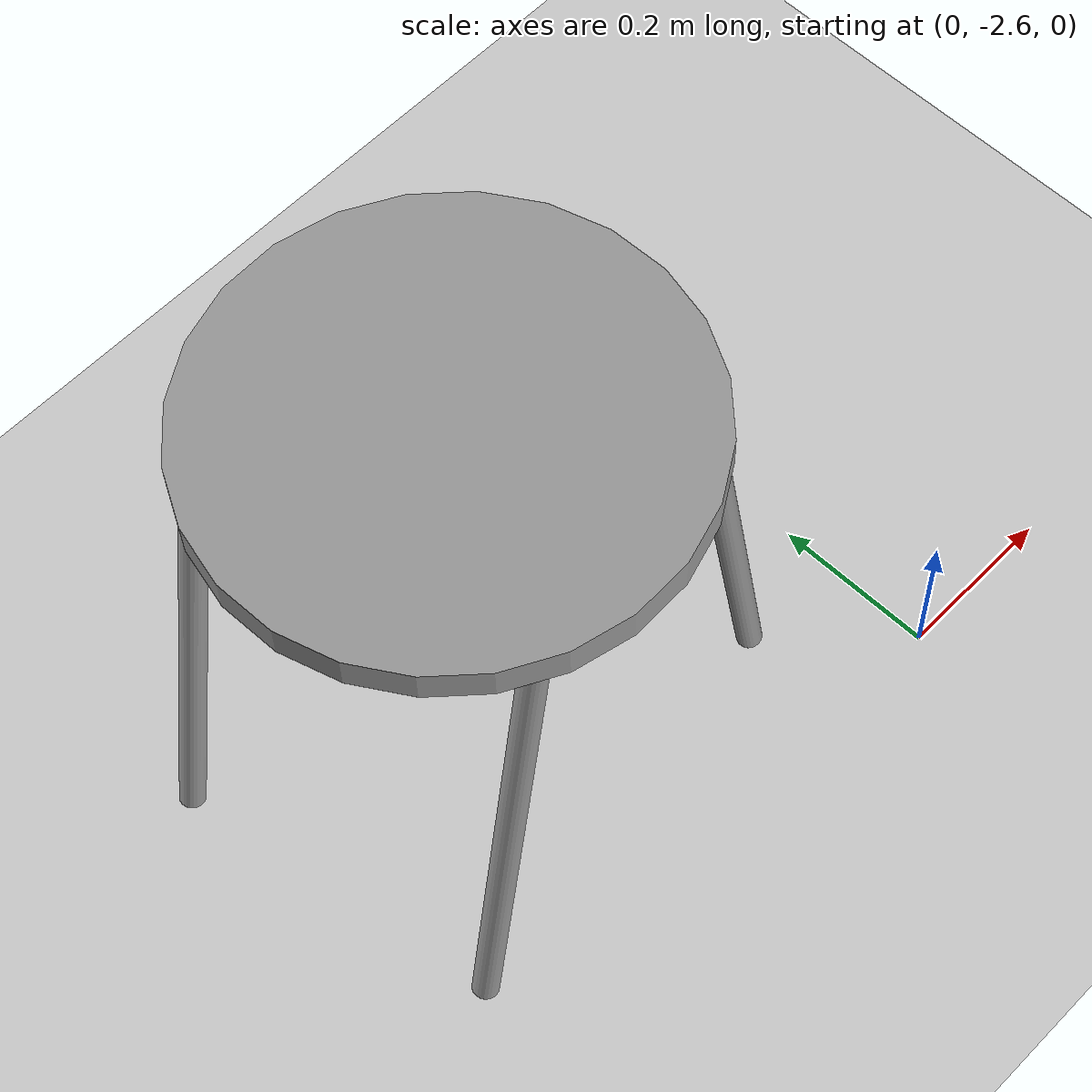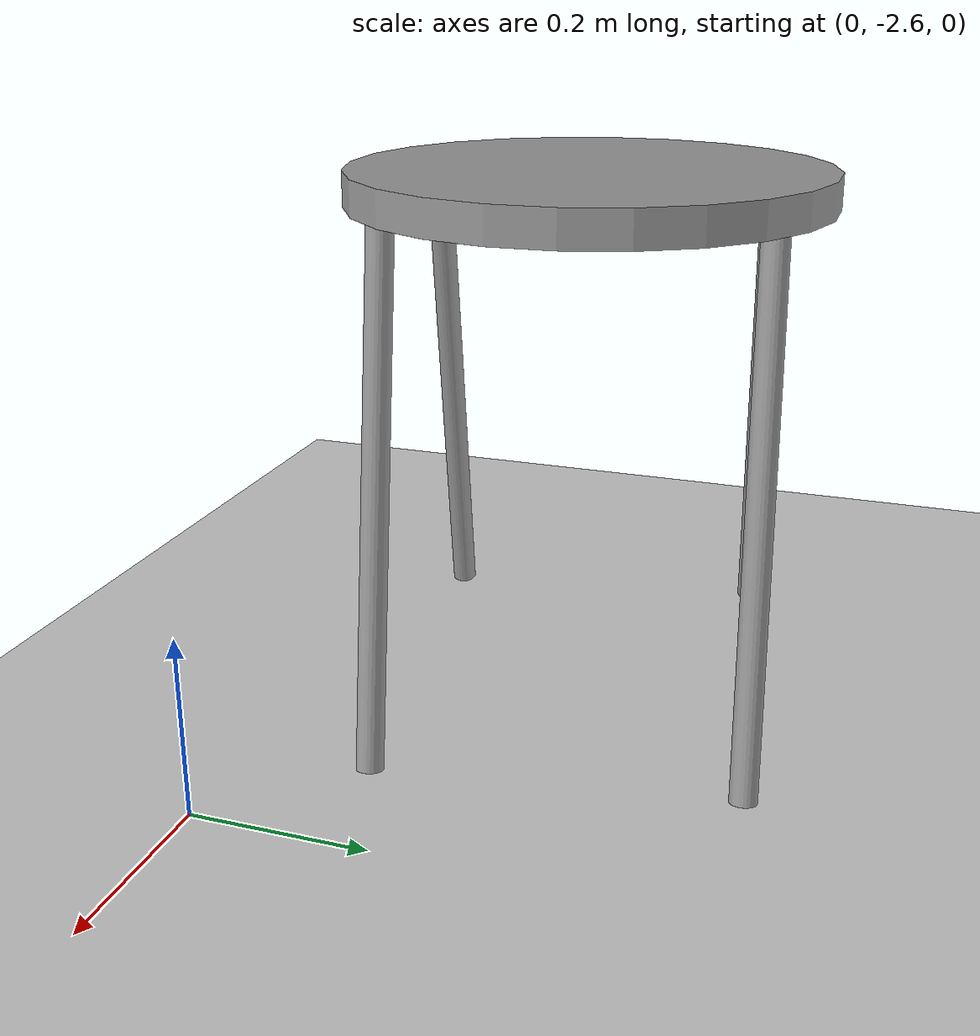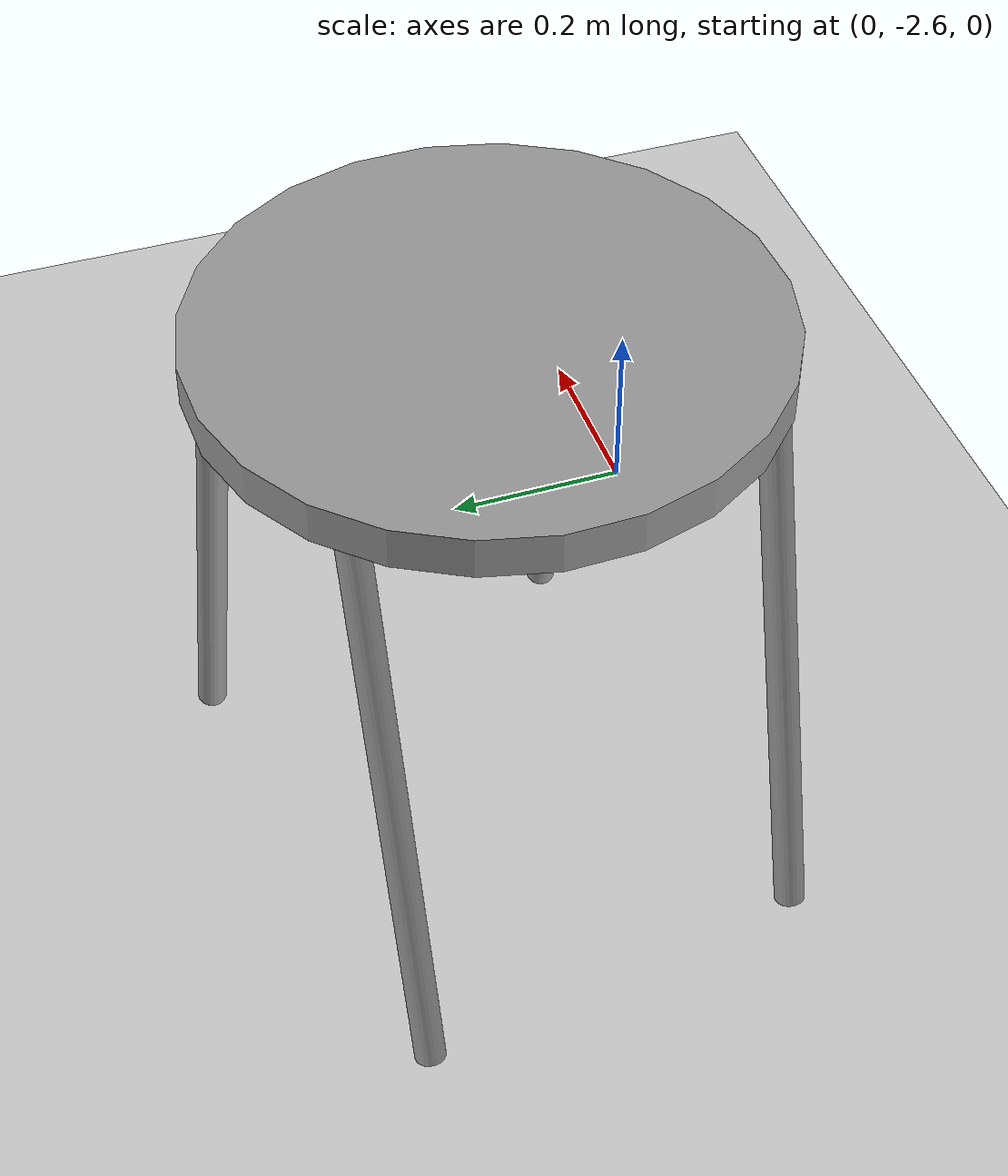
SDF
<sdf version="1.6">
 <world name="default">
  <model name="ground_plane">
   <static>1</static>
   <link name="link">
    <collision name="collision">
     <geometry><plane><normal>0 0 1</normal><size>100 100</size></plane></geometry>
     <surface><friction><ode><mu>100</mu><mu2>50</mu2></ode></friction></surface>
    </collision>
    <visual name="visual">
     <cast_shadows>0</cast_shadows>
     <geometry><plane><normal>0 0 1</normal><size>100 100</size></plane></geometry>
     <material>
      <script><uri>file://media/materials/scripts/gazebo.material</uri><name>Gazebo/Grey</name></script>
     </material>
    </visual>
   </link>
  </model>
  <model name="chair01_1">
   <link name="link_1">
    <pose>0 0 0.6 0 -0 0</pose>
    <inertial>
     <mass>1</mass>
     <inertia><ixx>0.145833</ixx><ixy>0</ixy><ixz>0</ixz><iyy>0.145833</iyy><iyz>0</iyz><izz>0.125</izz></inertia>
    </inertial>
    <visual name="visual">
     <geometry><cylinder><radius>0.27</radius><length>0.04</length></cylinder></geometry>
     <material>
      <lighting>1</lighting>
      <script><uri>file://media/materials/scripts/gazebo.material</uri><name>Gazebo/Grey</name></script>
      <shader type="pixel"><normal_map>__default__</normal_map></shader>
      <ambient>0.3 0.3 0.3 1</ambient>
      <diffuse>0.7 0.7 0.7 1</diffuse>
      <specular>0.01 0.01 0.01 1</specular>
      <emissive>0 0 0 1</emissive>
     </material>
    </visual>
    <collision name="collision">
     <geometry><cylinder><radius>0.27</radius><length>0.04</length></cylinder></geometry>
     <surface>
      <friction>
       <ode><mu>1</mu><mu2>1</mu2><fdir1>0 0 0</fdir1><slip1>0</slip1><slip2>0</slip2></ode>
       <torsional>
        <coefficient>1</coefficient>
        <patch_radius>0</patch_radius>
        <surface_radius>0</surface_radius>
        <use_patch_radius>1</use_patch_radius>
        <ode><slip>0</slip></ode>
       </torsional>
      </friction>
      <bounce><restitution_coefficient>0</restitution_coefficient><threshold>1e+06</threshold></bounce>
      <contact>
       <collide_without_contact>0</collide_without_contact>
       <collide_without_contact_bitmask>1</collide_without_contact_bitmask>
       <collide_bitmask>1</collide_bitmask>
       <ode>
        <soft_cfm>0</soft_cfm>
        <soft_erp>0.2</soft_erp>
        <kp>1e+13</kp>
        <kd>1</kd>
        <max_vel>0.01</max_vel>
        <min_depth>0</min_depth>
       </ode>
       <bullet>
        <split_impulse>1</split_impulse>
        <split_impulse_penetration_threshold>-0.01</split_impulse_penetration_threshold>
        <soft_cfm>0</soft_cfm>
        <soft_erp>0.2</soft_erp>
        <kp>1e+13</kp>
        <kd>1</kd>
       </bullet>
      </contact>
     </surface>
    </collision>
   </link>
   <link name="link_2">
    <pose>0.2 0.2 0.3 0 -0.2 0</pose>
    <inertial>
     <mass>1</mass>
     <inertia><ixx>0.145833</ixx><ixy>0</ixy><ixz>0</ixz><iyy>0.145833</iyy><iyz>0</iyz><izz>0.125</izz></inertia>
    </inertial>
    <visual name="visual">
     <geometry><cylinder><radius>0.015</radius><length>0.6</length></cylinder></geometry>
     <material>
      <lighting>1</lighting>
      <script><uri>file://media/materials/scripts/gazebo.material</uri><name>Gazebo/Grey</name></script>
      <shader type="pixel"><normal_map>__default__</normal_map></shader>
      <ambient>0.3 0.3 0.3 1</ambient>
      <diffuse>0.7 0.7 0.7 1</diffuse>
      <specular>0.01 0.01 0.01 1</specular>
      <emissive>0 0 0 1</emissive>
     </material>
    </visual>
    <collision name="collision">
     <geometry><cylinder><radius>0.015</radius><length>0.6</length></cylinder></geometry>
     <surface>
      <friction>
       <ode><mu>1</mu><mu2>1</mu2><fdir1>0 0 0</fdir1><slip1>0</slip1><slip2>0</slip2></ode>
       <torsional>
        <coefficient>1</coefficient>
        <patch_radius>0</patch_radius>
        <surface_radius>0</surface_radius>
        <use_patch_radius>1</use_patch_radius>
        <ode><slip>0</slip></ode>
       </torsional>
      </friction>
      <bounce><restitution_coefficient>0</restitution_coefficient><threshold>1e+06</threshold></bounce>
      <contact>
       <collide_without_contact>0</collide_without_contact>
       <collide_without_contact_bitmask>1</collide_without_contact_bitmask>
       <collide_bitmask>1</collide_bitmask>
       <ode>
        <soft_cfm>0</soft_cfm>
        <soft_erp>0.2</soft_erp>
        <kp>1e+13</kp>
        <kd>1</kd>
        <max_vel>0.01</max_vel>
        <min_depth>0</min_depth>
       </ode>
       <bullet>
        <split_impulse>1</split_impulse>
        <split_impulse_penetration_threshold>-0.01</split_impulse_penetration_threshold>
        <soft_cfm>0</soft_cfm>
        <soft_erp>0.2</soft_erp>
        <kp>1e+13</kp>
        <kd>1</kd>
       </bullet>
      </contact>
     </surface>
    </collision>
   </link>
   <link name="link_2_clone">
    <pose>0.2 -0.2 0.3 0 -0.2 0</pose>
    <inertial>
     <mass>1</mass>
     <inertia><ixx>0.145833</ixx><ixy>0</ixy><ixz>0</ixz><iyy>0.145833</iyy><iyz>0</iyz><izz>0.125</izz></inertia>
    </inertial>
    <visual name="visual">
     <geometry><cylinder><radius>0.015</radius><length>0.6</length></cylinder></geometry>
     <material>
      <lighting>1</lighting>
      <script><uri>file://media/materials/scripts/gazebo.material</uri><name>Gazebo/Grey</name></script>
      <shader type="pixel"><normal_map>__default__</normal_map></shader>
      <ambient>0.3 0.3 0.3 1</ambient>
      <diffuse>0.7 0.7 0.7 1</diffuse>
      <specular>0.01 0.01 0.01 1</specular>
      <emissive>0 0 0 1</emissive>
     </material>
    </visual>
    <collision name="collision">
     <geometry><cylinder><radius>0.015</radius><length>0.6</length></cylinder></geometry>
     <surface>
      <friction>
       <ode><mu>1</mu><mu2>1</mu2><fdir1>0 0 0</fdir1><slip1>0</slip1><slip2>0</slip2></ode>
       <torsional>
        <coefficient>1</coefficient>
        <patch_radius>0</patch_radius>
        <surface_radius>0</surface_radius>
        <use_patch_radius>1</use_patch_radius>
        <ode><slip>0</slip></ode>
       </torsional>
      </friction>
      <bounce><restitution_coefficient>0</restitution_coefficient><threshold>1e+06</threshold></bounce>
      <contact>
       <collide_without_contact>0</collide_without_contact>
       <collide_without_contact_bitmask>1</collide_without_contact_bitmask>
       <collide_bitmask>1</collide_bitmask>
       <ode>
        <soft_cfm>0</soft_cfm>
        <soft_erp>0.2</soft_erp>
        <kp>1e+13</kp>
        <kd>1</kd>
        <max_vel>0.01</max_vel>
        <min_depth>0</min_depth>
       </ode>
       <bullet>
        <split_impulse>1</split_impulse>
        <split_impulse_penetration_threshold>-0.01</split_impulse_penetration_threshold>
        <soft_cfm>0</soft_cfm>
        <soft_erp>0.2</soft_erp>
        <kp>1e+13</kp>
        <kd>1</kd>
       </bullet>
      </contact>
     </surface>
    </collision>
   </link>
   <link name="link_2_clone_0">
    <pose>-0.2 -0.2 0.3 0 0.2 0</pose>
    <inertial>
     <mass>1</mass>
     <inertia><ixx>0.145833</ixx><ixy>0</ixy><ixz>0</ixz><iyy>0.145833</iyy><iyz>0</iyz><izz>0.125</izz></inertia>
    </inertial>
    <visual name="visual">
     <geometry><cylinder><radius>0.015</radius><length>0.6</length></cylinder></geometry>
     <material>
      <lighting>1</lighting>
      <script><uri>file://media/materials/scripts/gazebo.material</uri><name>Gazebo/Grey</name></script>
      <shader type="pixel"><normal_map>__default__</normal_map></shader>
      <ambient>0.3 0.3 0.3 1</ambient>
      <diffuse>0.7 0.7 0.7 1</diffuse>
      <specular>0.01 0.01 0.01 1</specular>
      <emissive>0 0 0 1</emissive>
     </material>
    </visual>
    <collision name="collision">
     <geometry><cylinder><radius>0.015</radius><length>0.6</length></cylinder></geometry>
     <surface>
      <friction>
       <ode><mu>1</mu><mu2>1</mu2><fdir1>0 0 0</fdir1><slip1>0</slip1><slip2>0</slip2></ode>
       <torsional>
        <coefficient>1</coefficient>
        <patch_radius>0</patch_radius>
        <surface_radius>0</surface_radius>
        <use_patch_radius>1</use_patch_radius>
        <ode><slip>0</slip></ode>
       </torsional>
      </friction>
      <bounce><restitution_coefficient>0</restitution_coefficient><threshold>1e+06</threshold></bounce>
      <contact>
       <collide_without_contact>0</collide_without_contact>
       <collide_without_contact_bitmask>1</collide_without_contact_bitmask>
       <collide_bitmask>1</collide_bitmask>
       <ode>
        <soft_cfm>0</soft_cfm>
        <soft_erp>0.2</soft_erp>
        <kp>1e+13</kp>
        <kd>1</kd>
        <max_vel>0.01</max_vel>
        <min_depth>0</min_depth>
       </ode>
       <bullet>
        <split_impulse>1</split_impulse>
        <split_impulse_penetration_threshold>-0.01</split_impulse_penetration_threshold>
        <soft_cfm>0</soft_cfm>
        <soft_erp>0.2</soft_erp>
        <kp>1e+13</kp>
        <kd>1</kd>
       </bullet>
      </contact>
     </surface>
    </collision>
   </link>
   <link name="link_2_clone_1">
    <pose>-0.2 0.2 0.3 0 0.21 0</pose>
    <inertial>
     <mass>1</mass>
     <inertia><ixx>0.145833</ixx><ixy>0</ixy><ixz>0</ixz><iyy>0.145833</iyy><iyz>0</iyz><izz>0.125</izz></inertia>
    </inertial>
    <visual name="visual">
     <geometry><cylinder><radius>0.015</radius><length>0.6</length></cylinder></geometry>
     <material>
      <lighting>1</lighting>
      <script><uri>file://media/materials/scripts/gazebo.material</uri><name>Gazebo/Grey</name></script>
      <shader type="pixel"><normal_map>__default__</normal_map></shader>
      <ambient>0.3 0.3 0.3 1</ambient>
      <diffuse>0.7 0.7 0.7 1</diffuse>
      <specular>0.01 0.01 0.01 1</specular>
      <emissive>0 0 0 1</emissive>
     </material>
    </visual>
    <collision name="collision">
     <geometry><cylinder><radius>0.015</radius><length>0.6</length></cylinder></geometry>
     <surface>
      <friction>
       <ode><mu>1</mu><mu2>1</mu2><fdir1>0 0 0</fdir1><slip1>0</slip1><slip2>0</slip2></ode>
       <torsional>
        <coefficient>1</coefficient>
        <patch_radius>0</patch_radius>
        <surface_radius>0</surface_radius>
        <use_patch_radius>1</use_patch_radius>
        <ode><slip>0</slip></ode>
       </torsional>
      </friction>
      <bounce><restitution_coefficient>0</restitution_coefficient><threshold>1e+06</threshold></bounce>
      <contact>
       <collide_without_contact>0</collide_without_contact>
       <collide_without_contact_bitmask>1</collide_without_contact_bitmask>
       <collide_bitmask>1</collide_bitmask>
       <ode>
        <soft_cfm>0</soft_cfm>
        <soft_erp>0.2</soft_erp>
        <kp>1e+13</kp>
        <kd>1</kd>
        <max_vel>0.01</max_vel>
        <min_depth>0</min_depth>
       </ode>
       <bullet>
        <split_impulse>1</split_impulse>
        <split_impulse_penetration_threshold>-0.01</split_impulse_penetration_threshold>
        <soft_cfm>0</soft_cfm>
        <soft_erp>0.2</soft_erp>
        <kp>1e+13</kp>
        <kd>1</kd>
       </bullet>
      </contact>
     </surface>
    </collision>
   </link>
   <joint name="link_1_JOINT_1" type="revolute">
    <parent>link_1</parent>
    <child>link_2</child>
    <axis>
     <xyz>0 0 1</xyz>
     <use_parent_model_frame>0</use_parent_model_frame>
     <limit>
      <lower>-1.79769e+308</lower>
      <upper>1.79769e+308</upper>
      <effort>-1</effort>
      <velocity>-1</velocity>
     </limit>
     <dynamics>
      <spring_reference>0</spring_reference>
      <spring_stiffness>0</spring_stiffness>
      <damping>0</damping>
     </dynamics>
    </axis>
    <physics>
     <ode><limit><cfm>0</cfm><erp>0.2</erp></limit><suspension><cfm>0</cfm><erp>0.2</erp></suspension></ode>
    </physics>
   </joint>
   <joint name="link_1_JOINT_2" type="revolute">
    <parent>link_1</parent>
    <child>link_2_clone</child>
    <axis>
     <xyz>0 0 1</xyz>
     <use_parent_model_frame>0</use_parent_model_frame>
     <limit>
      <lower>-1.79769e+308</lower>
      <upper>1.79769e+308</upper>
      <effort>-1</effort>
      <velocity>-1</velocity>
     </limit>
     <dynamics>
      <spring_reference>0</spring_reference>
      <spring_stiffness>0</spring_stiffness>
      <damping>0</damping>
     </dynamics>
    </axis>
    <physics>
     <ode><limit><cfm>0</cfm><erp>0.2</erp></limit><suspension><cfm>0</cfm><erp>0.2</erp></suspension></ode>
    </physics>
   </joint>
   <joint name="link_1_JOINT_3" type="revolute">
    <parent>link_1</parent>
    <child>link_2_clone_0</child>
    <axis>
     <xyz>0 0 1</xyz>
     <use_parent_model_frame>0</use_parent_model_frame>
     <limit>
      <lower>-1.79769e+308</lower>
      <upper>1.79769e+308</upper>
      <effort>-1</effort>
      <velocity>-1</velocity>
     </limit>
     <dynamics>
      <spring_reference>0</spring_reference>
      <spring_stiffness>0</spring_stiffness>
      <damping>0</damping>
     </dynamics>
    </axis>
    <physics>
     <ode><limit><cfm>0</cfm><erp>0.2</erp></limit><suspension><cfm>0</cfm><erp>0.2</erp></suspension></ode>
    </physics>
   </joint>
   <joint name="link_1_JOINT_4" type="revolute">
    <parent>link_1</parent>
    <child>link_2_clone_1</child>
    <axis>
     <xyz>0 0 1</xyz>
     <use_parent_model_frame>0</use_parent_model_frame>
     <limit>
      <lower>-1.79769e+308</lower>
      <upper>1.79769e+308</upper>
      <effort>-1</effort>
      <velocity>-1</velocity>
     </limit>
     <dynamics>
      <spring_reference>0</spring_reference>
      <spring_stiffness>0</spring_stiffness>
      <damping>0</damping>
     </dynamics>
    </axis>
    <physics>
     <ode><limit><cfm>0</cfm><erp>0.2</erp></limit><suspension><cfm>0</cfm><erp>0.2</erp></suspension></ode>
    </physics>
   </joint>
   <static>0</static>
   <pose>-0.421854 -2.30013 -0.003001 -0.000709 -0.000579 0.157374</pose>
  </model>
 </world>
</sdf>
